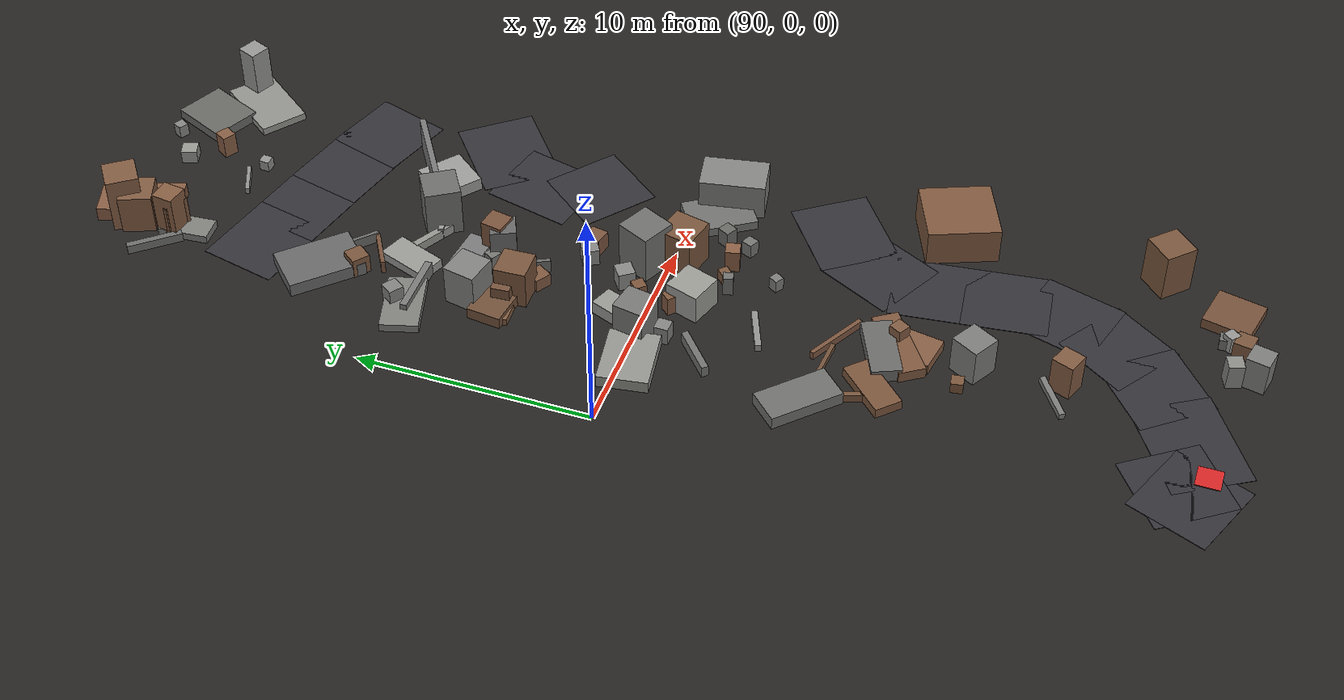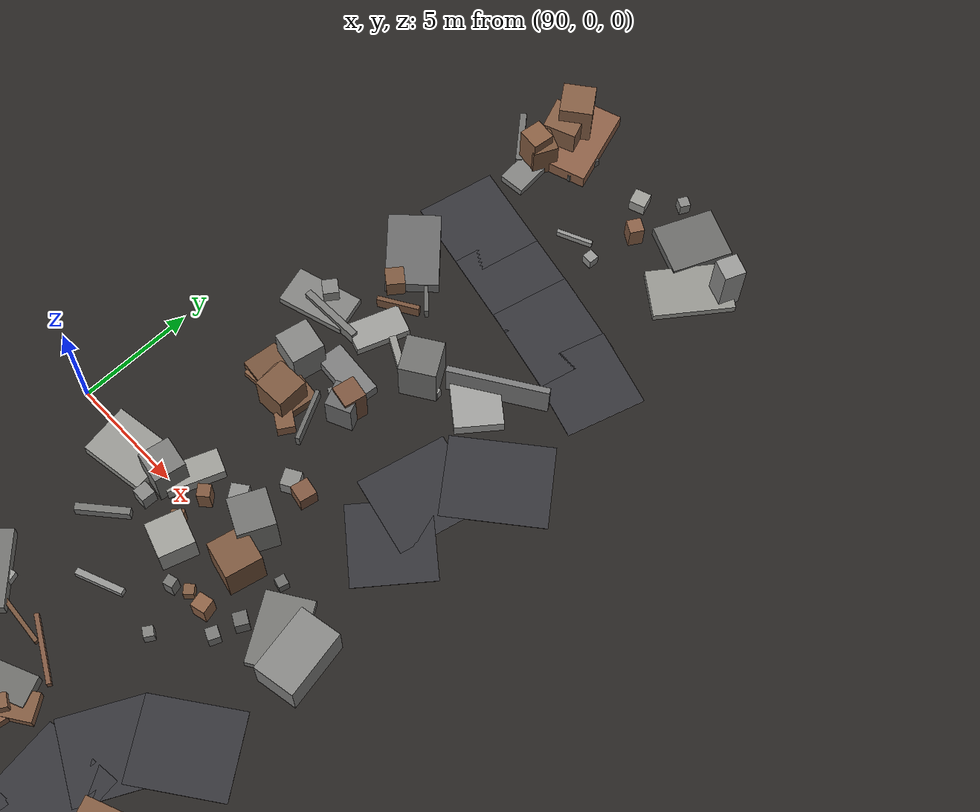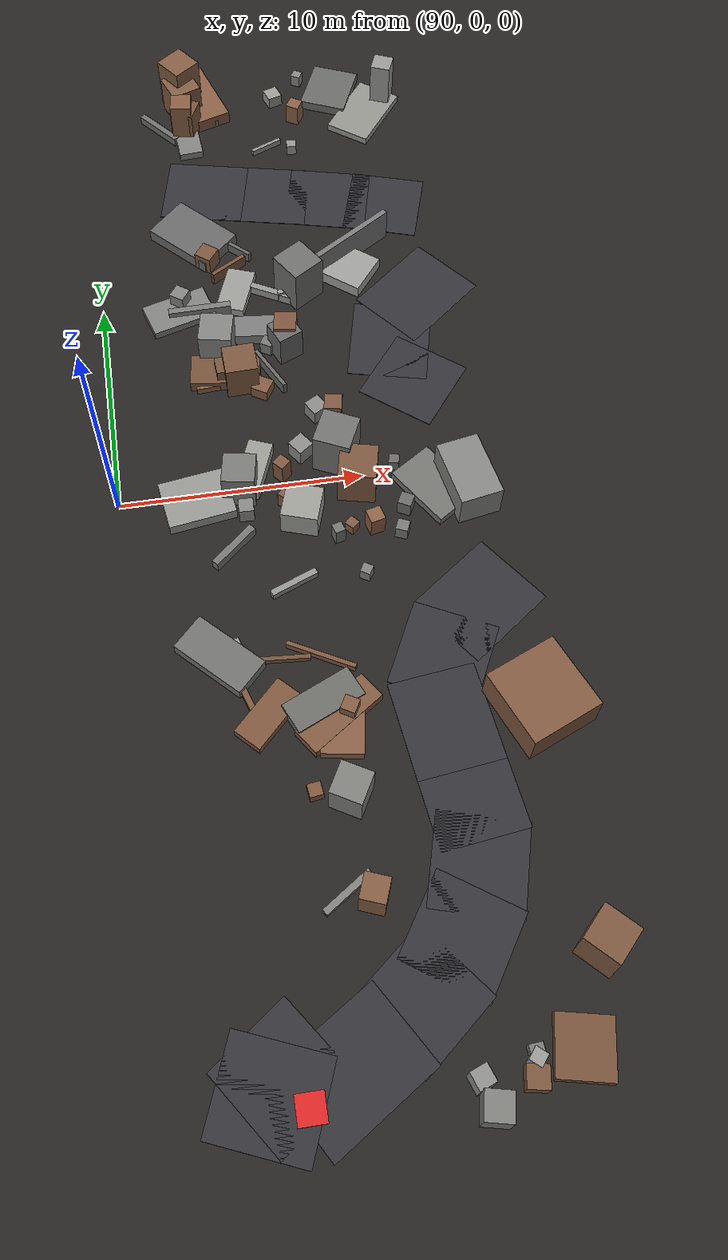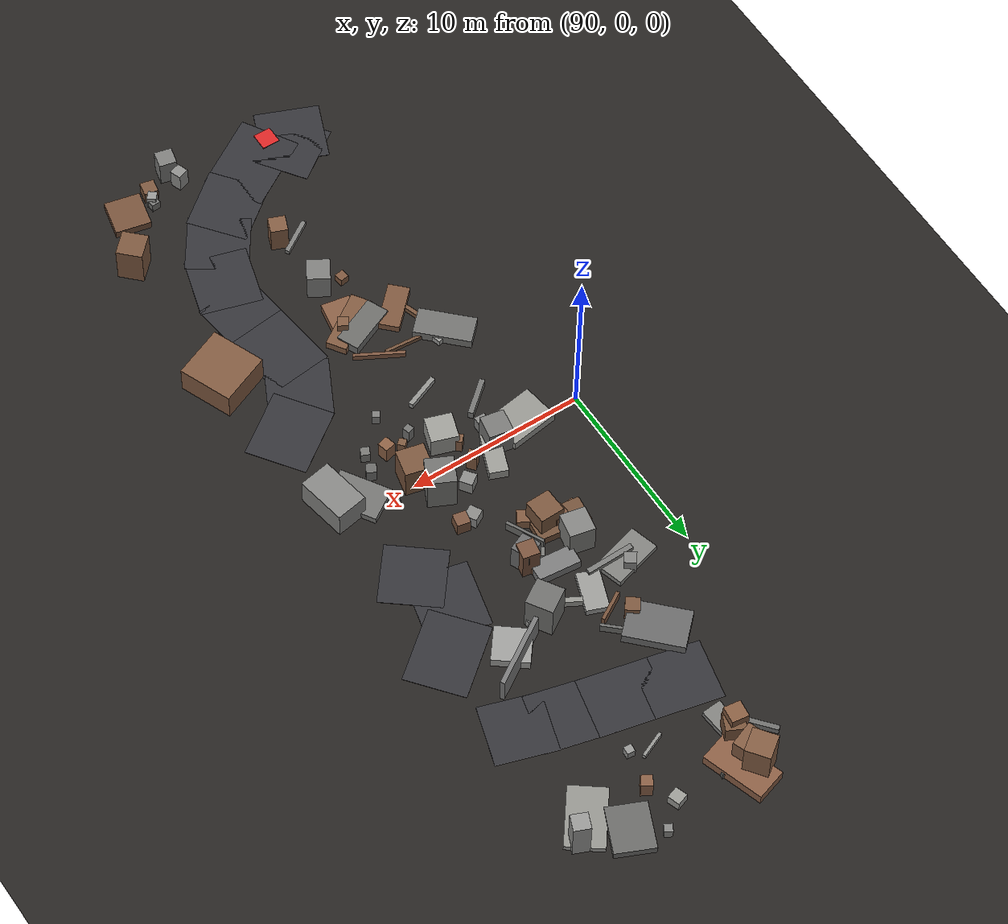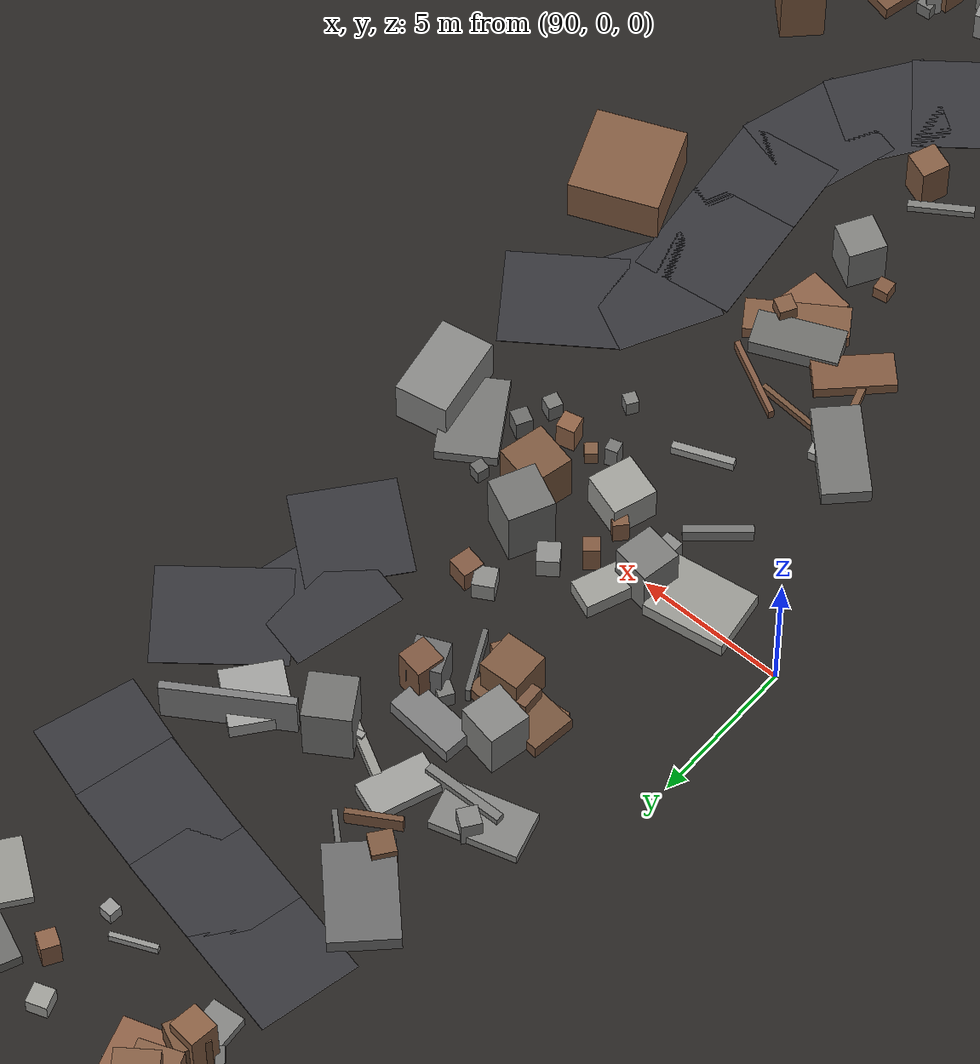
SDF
<sdf version="1.6">
 <world name="navitas_arena">
  <model name="ground_plane">
   <static>true</static>
   <link name="link">
    <collision name="collision">
     <geometry><plane><normal>0 0 1</normal><size>400 400</size></plane></geometry>
     <surface><friction><ode><mu>0.750</mu><mu2>0.750</mu2></ode></friction></surface>
    </collision>
    <visual name="visual">
     <cast_shadows>false</cast_shadows>
     <geometry><plane><normal>0 0 1</normal><size>400 400</size></plane></geometry>
     <material><ambient>0.150 0.140 0.130 1</ambient><diffuse>0.150 0.140 0.130 1</diffuse></material>
    </visual>
   </link>
  </model>
  <model name="road_zor_1_0">
   <static>true</static>
   <pose>93.369 -22.494 0.040 0 0 2.756</pose>
   <link name="link">
    <collision name="col"><geometry><box><size>3.590 3.400 0.020</size></box></geometry></collision>
    <visual name="vis">
     <geometry><box><size>3.590 3.400 0.020</size></box></geometry>
     <material><ambient>0.20 0.20 0.22 1</ambient><diffuse>0.20 0.20 0.22 1</diffuse></material>
    </visual>
   </link>
  </model>
  <model name="road_zor_2_0">
   <static>true</static>
   <pose>93.854 -21.935 0.040 0 0 2.192</pose>
   <link name="link">
    <collision name="col"><geometry><box><size>3.519 3.400 0.020</size></box></geometry></collision>
    <visual name="vis">
     <geometry><box><size>3.519 3.400 0.020</size></box></geometry>
     <material><ambient>0.20 0.20 0.22 1</ambient><diffuse>0.20 0.20 0.22 1</diffuse></material>
    </visual>
   </link>
  </model>
  <model name="road_zor_3_0">
   <static>true</static>
   <pose>96.139 -22.070 0.040 0 0 0.548</pose>
   <link name="link">
    <collision name="col"><geometry><box><size>4.469 3.400 0.020</size></box></geometry></collision>
    <visual name="vis">
     <geometry><box><size>4.469 3.400 0.020</size></box></geometry>
     <material><ambient>0.20 0.20 0.22 1</ambient><diffuse>0.20 0.20 0.22 1</diffuse></material>
    </visual>
   </link>
  </model>
  <model name="road_zor_3_1">
   <static>true</static>
   <pose>98.700 -20.320 0.040 0 0 0.668</pose>
   <link name="link">
    <collision name="col"><geometry><box><size>3.546 3.400 0.020</size></box></geometry></collision>
    <visual name="vis">
     <geometry><box><size>3.546 3.400 0.020</size></box></geometry>
     <material><ambient>0.20 0.20 0.22 1</ambient><diffuse>0.20 0.20 0.22 1</diffuse></material>
    </visual>
   </link>
  </model>
  <model name="road_zor_3_2">
   <static>true</static>
   <pose>100.428 -18.484 0.040 0 0 0.974</pose>
   <link name="link">
    <collision name="col"><geometry><box><size>3.355 3.400 0.020</size></box></geometry></collision>
    <visual name="vis">
     <geometry><box><size>3.355 3.400 0.020</size></box></geometry>
     <material><ambient>0.20 0.20 0.22 1</ambient><diffuse>0.20 0.20 0.22 1</diffuse></material>
    </visual>
   </link>
  </model>
  <model name="road_zor_3_3">
   <static>true</static>
   <pose>101.473 -16.234 0.040 0 0 1.290</pose>
   <link name="link">
    <collision name="col"><geometry><box><size>3.469 3.400 0.020</size></box></geometry></collision>
    <visual name="vis">
     <geometry><box><size>3.469 3.400 0.020</size></box></geometry>
     <material><ambient>0.20 0.20 0.22 1</ambient><diffuse>0.20 0.20 0.22 1</diffuse></material>
    </visual>
   </link>
  </model>
  <model name="road_zor_3_4">
   <static>true</static>
   <pose>101.668 -13.690 0.040 0 0 1.693</pose>
   <link name="link">
    <collision name="col"><geometry><box><size>3.540 3.400 0.020</size></box></geometry></collision>
    <visual name="vis">
     <geometry><box><size>3.540 3.400 0.020</size></box></geometry>
     <material><ambient>0.20 0.20 0.22 1</ambient><diffuse>0.20 0.20 0.22 1</diffuse></material>
    </visual>
   </link>
  </model>
  <model name="road_zor_3_5">
   <static>true</static>
   <pose>101.333 -10.910 0.040 0 0 1.689</pose>
   <link name="link">
    <collision name="col"><geometry><box><size>3.861 3.400 0.020</size></box></geometry></collision>
    <visual name="vis">
     <geometry><box><size>3.861 3.400 0.020</size></box></geometry>
     <material><ambient>0.20 0.20 0.22 1</ambient><diffuse>0.20 0.20 0.22 1</diffuse></material>
    </visual>
   </link>
  </model>
  <model name="road_zor_3_6">
   <static>true</static>
   <pose>101.751 -8.282 0.040 0 0 1.098</pose>
   <link name="link">
    <collision name="col"><geometry><box><size>3.501 3.400 0.020</size></box></geometry></collision>
    <visual name="vis">
     <geometry><box><size>3.501 3.400 0.020</size></box></geometry>
     <material><ambient>0.20 0.20 0.22 1</ambient><diffuse>0.20 0.20 0.22 1</diffuse></material>
    </visual>
   </link>
  </model>
  <model name="road_zor_3_7">
   <static>true</static>
   <pose>103.560 -6.250 0.040 0 0 0.624</pose>
   <link name="link">
    <collision name="col"><geometry><box><size>3.896 3.400 0.020</size></box></geometry></collision>
    <visual name="vis">
     <geometry><box><size>3.896 3.400 0.020</size></box></geometry>
     <material><ambient>0.20 0.20 0.22 1</ambient><diffuse>0.20 0.20 0.22 1</diffuse></material>
    </visual>
   </link>
  </model>
  <model name="road_zor_3_13">
   <static>true</static>
   <pose>102.884 4.444 0.040 0 0 2.468</pose>
   <link name="link">
    <collision name="col"><geometry><box><size>3.393 3.400 0.020</size></box></geometry></collision>
    <visual name="vis">
     <geometry><box><size>3.393 3.400 0.020</size></box></geometry>
     <material><ambient>0.20 0.20 0.22 1</ambient><diffuse>0.20 0.20 0.22 1</diffuse></material>
    </visual>
   </link>
  </model>
  <model name="road_zor_3_14">
   <static>true</static>
   <pose>102.252 6.648 0.040 0 0 1.336</pose>
   <link name="link">
    <collision name="col"><geometry><box><size>3.831 3.400 0.020</size></box></geometry></collision>
    <visual name="vis">
     <geometry><box><size>3.831 3.400 0.020</size></box></geometry>
     <material><ambient>0.20 0.20 0.22 1</ambient><diffuse>0.20 0.20 0.22 1</diffuse></material>
    </visual>
   </link>
  </model>
  <model name="road_zor_3_15">
   <static>true</static>
   <pose>103.891 9.124 0.040 0 0 0.681</pose>
   <link name="link">
    <collision name="col"><geometry><box><size>4.240 3.400 0.020</size></box></geometry></collision>
    <visual name="vis">
     <geometry><box><size>4.240 3.400 0.020</size></box></geometry>
     <material><ambient>0.20 0.20 0.22 1</ambient><diffuse>0.20 0.20 0.22 1</diffuse></material>
    </visual>
   </link>
  </model>
  <model name="road_zor_3_18">
   <static>true</static>
   <pose>103.312 14.594 0.040 0 0 2.840</pose>
   <link name="link">
    <collision name="col"><geometry><box><size>3.356 3.400 0.020</size></box></geometry></collision>
    <visual name="vis">
     <geometry><box><size>3.356 3.400 0.020</size></box></geometry>
     <material><ambient>0.20 0.20 0.22 1</ambient><diffuse>0.20 0.20 0.22 1</diffuse></material>
    </visual>
   </link>
  </model>
  <model name="road_zor_3_19">
   <static>true</static>
   <pose>100.768 15.296 0.040 0 0 2.900</pose>
   <link name="link">
    <collision name="col"><geometry><box><size>3.725 3.400 0.020</size></box></geometry></collision>
    <visual name="vis">
     <geometry><box><size>3.725 3.400 0.020</size></box></geometry>
     <material><ambient>0.20 0.20 0.22 1</ambient><diffuse>0.20 0.20 0.22 1</diffuse></material>
    </visual>
   </link>
  </model>
  <model name="road_zor_3_20">
   <static>true</static>
   <pose>97.956 15.952 0.040 0 0 2.924</pose>
   <link name="link">
    <collision name="col"><geometry><box><size>3.851 3.400 0.020</size></box></geometry></collision>
    <visual name="vis">
     <geometry><box><size>3.851 3.400 0.020</size></box></geometry>
     <material><ambient>0.20 0.20 0.22 1</ambient><diffuse>0.20 0.20 0.22 1</diffuse></material>
    </visual>
   </link>
  </model>
  <model name="road_zor_3_21">
   <static>true</static>
   <pose>95.135 16.579 0.040 0 0 2.922</pose>
   <link name="link">
    <collision name="col"><geometry><box><size>3.727 3.400 0.020</size></box></geometry></collision>
    <visual name="vis">
     <geometry><box><size>3.727 3.400 0.020</size></box></geometry>
     <material><ambient>0.20 0.20 0.22 1</ambient><diffuse>0.20 0.20 0.22 1</diffuse></material>
    </visual>
   </link>
  </model>
  <model name="deb_zor_2">
   <static>true</static>
   <pose>96.750 -0.846 0.429 0 0 0.827</pose>
   <link name="link">
    <collision name="col"><geometry><box><size>0.511 0.511 0.857</size></box></geometry></collision>
    <visual name="vis">
     <geometry><box><size>0.511 0.511 0.857</size></box></geometry>
     <material><ambient>0.50 0.35 0.25 1</ambient><diffuse>0.50 0.35 0.25 1</diffuse></material>
    </visual>
   </link>
  </model>
  <model name="deb_zor_17">
   <static>true</static>
   <pose>97.459 9.899 0.213 0 0 2.646</pose>
   <link name="link">
    <collision name="col"><geometry><box><size>1.948 0.295 0.427</size></box></geometry></collision>
    <visual name="vis">
     <geometry><box><size>1.948 0.295 0.427</size></box></geometry>
     <material><ambient>0.58 0.58 0.56 1</ambient><diffuse>0.58 0.58 0.56 1</diffuse></material>
    </visual>
   </link>
  </model>
  <model name="deb_zor_18">
   <static>true</static>
   <pose>94.829 12.154 0.431 0 0 2.495</pose>
   <link name="link">
    <collision name="col"><geometry><box><size>0.777 0.777 0.862</size></box></geometry></collision>
    <visual name="vis">
     <geometry><box><size>0.777 0.777 0.862</size></box></geometry>
     <material><ambient>0.48 0.34 0.24 1</ambient><diffuse>0.48 0.34 0.24 1</diffuse></material>
    </visual>
   </link>
  </model>
  <model name="deb_zor_19">
   <static>true</static>
   <pose>99.174 -2.375 0.257 0 0 2.319</pose>
   <link name="link">
    <collision name="col"><geometry><box><size>0.422 0.422 0.515</size></box></geometry></collision>
    <visual name="vis">
     <geometry><box><size>0.422 0.422 0.515</size></box></geometry>
     <material><ambient>0.49 0.35 0.25 1</ambient><diffuse>0.49 0.35 0.25 1</diffuse></material>
    </visual>
   </link>
  </model>
  <model name="deb_zor_23">
   <static>true</static>
   <pose>99.696 -0.400 0.946 0 0 1.345</pose>
   <link name="link">
    <collision name="col"><geometry><box><size>1.538 1.538 1.891</size></box></geometry></collision>
    <visual name="vis">
     <geometry><box><size>1.538 1.538 1.891</size></box></geometry>
     <material><ambient>0.48 0.34 0.24 1</ambient><diffuse>0.48 0.34 0.24 1</diffuse></material>
    </visual>
   </link>
  </model>
  <model name="deb_zor_27">
   <static>true</static>
   <pose>95.387 23.486 0.246 0 0 2.366</pose>
   <link name="link">
    <collision name="col"><geometry><box><size>0.789 0.789 0.492</size></box></geometry></collision>
    <visual name="vis">
     <geometry><box><size>0.789 0.789 0.492</size></box></geometry>
     <material><ambient>0.53 0.53 0.52 1</ambient><diffuse>0.53 0.53 0.52 1</diffuse></material>
    </visual>
   </link>
  </model>
  <model name="deb_zor_34">
   <static>true</static>
   <pose>94.793 7.144 0.899 0 0 2.946</pose>
   <link name="link">
    <collision name="col"><geometry><box><size>1.407 1.407 1.797</size></box></geometry></collision>
    <visual name="vis">
     <geometry><box><size>1.407 1.407 1.797</size></box></geometry>
     <material><ambient>0.51 0.51 0.50 1</ambient><diffuse>0.51 0.51 0.50 1</diffuse></material>
    </visual>
   </link>
  </model>
  <model name="deb_zor_40">
   <static>true</static>
   <pose>95.390 22.481 0.309 0 0 1.883</pose>
   <link name="link">
    <collision name="col"><geometry><box><size>3.519 1.780 0.617</size></box></geometry></collision>
    <visual name="vis">
     <geometry><box><size>3.519 1.780 0.617</size></box></geometry>
     <material><ambient>0.54 0.37 0.27 1</ambient><diffuse>0.54 0.37 0.27 1</diffuse></material>
    </visual>
   </link>
  </model>
  <model name="deb_zor_45">
   <static>true</static>
   <pose>98.533 3.294 0.374 0 0 0.518</pose>
   <link name="link">
    <collision name="col"><geometry><box><size>0.711 0.711 0.748</size></box></geometry></collision>
    <visual name="vis">
     <geometry><box><size>0.711 0.711 0.748</size></box></geometry>
     <material><ambient>0.53 0.53 0.52 1</ambient><diffuse>0.53 0.53 0.52 1</diffuse></material>
    </visual>
   </link>
  </model>
  <model name="deb_zor_51">
   <static>true</static>
   <pose>95.715 11.509 0.294 0 0 0.539</pose>
   <link name="link">
    <collision name="col"><geometry><box><size>1.768 0.183 0.589</size></box></geometry></collision>
    <visual name="vis">
     <geometry><box><size>1.768 0.183 0.589</size></box></geometry>
     <material><ambient>0.46 0.32 0.23 1</ambient><diffuse>0.46 0.32 0.23 1</diffuse></material>
    </visual>
   </link>
  </model>
  <model name="deb_zor_53">
   <static>true</static>
   <pose>103.571 -22.536 0.235 0 0 1.356</pose>
   <link name="link">
    <collision name="col"><geometry><box><size>2.039 1.977 0.469</size></box></geometry></collision>
    <visual name="vis">
     <geometry><box><size>2.039 1.977 0.469</size></box></geometry>
     <material><ambient>0.46 0.32 0.23 1</ambient><diffuse>0.46 0.32 0.23 1</diffuse></material>
    </visual>
   </link>
  </model>
  <model name="deb_zor_55">
   <static>true</static>
   <pose>93.188 -0.347 0.267 0 0 0.149</pose>
   <link name="link">
    <collision name="col"><geometry><box><size>2.759 2.107 0.534</size></box></geometry></collision>
    <visual name="vis">
     <geometry><box><size>2.759 2.107 0.534</size></box></geometry>
     <material><ambient>0.58 0.58 0.56 1</ambient><diffuse>0.58 0.58 0.56 1</diffuse></material>
    </visual>
   </link>
  </model>
  <model name="deb_zor_59">
   <static>true</static>
   <pose>101.876 22.266 0.225 0 0 1.157</pose>
   <link name="link">
    <collision name="col"><geometry><box><size>2.597 2.180 0.450</size></box></geometry></collision>
    <visual name="vis">
     <geometry><box><size>2.597 2.180 0.450</size></box></geometry>
     <material><ambient>0.41 0.41 0.40 1</ambient><diffuse>0.41 0.41 0.40 1</diffuse></material>
    </visual>
   </link>
  </model>
  <model name="deb_zor_64">
   <static>true</static>
   <pose>96.184 -12.900 0.241 0 0 1.707</pose>
   <link name="link">
    <collision name="col"><geometry><box><size>0.509 0.509 0.483</size></box></geometry></collision>
    <visual name="vis">
     <geometry><box><size>0.509 0.509 0.483</size></box></geometry>
     <material><ambient>0.49 0.34 0.24 1</ambient><diffuse>0.49 0.34 0.24 1</diffuse></material>
    </visual>
   </link>
  </model>
  <model name="deb_zor_66">
   <static>true</static>
   <pose>94.979 5.716 0.503 0 0 1.639</pose>
   <link name="link">
    <collision name="col"><geometry><box><size>0.799 0.799 1.006</size></box></geometry></collision>
    <visual name="vis">
     <geometry><box><size>0.799 0.799 1.006</size></box></geometry>
     <material><ambient>0.47 0.33 0.24 1</ambient><diffuse>0.47 0.33 0.24 1</diffuse></material>
    </visual>
   </link>
  </model>
  <model name="deb_zor_70">
   <static>true</static>
   <pose>96.553 -4.561 0.168 0 0 0.383</pose>
   <link name="link">
    <collision name="col"><geometry><box><size>2.001 0.259 0.336</size></box></geometry></collision>
    <visual name="vis">
     <geometry><box><size>2.001 0.259 0.336</size></box></geometry>
     <material><ambient>0.57 0.57 0.56 1</ambient><diffuse>0.57 0.57 0.56 1</diffuse></material>
    </visual>
   </link>
  </model>
  <model name="deb_zor_74">
   <static>true</static>
   <pose>94.507 20.507 1.048 0 0 1.449</pose>
   <link name="link">
    <collision name="col"><geometry><box><size>0.949 0.949 2.096</size></box></geometry></collision>
    <visual name="vis">
     <geometry><box><size>0.949 0.949 2.096</size></box></geometry>
     <material><ambient>0.53 0.37 0.26 1</ambient><diffuse>0.53 0.37 0.26 1</diffuse></material>
    </visual>
   </link>
  </model>
  <model name="deb_zor_75">
   <static>true</static>
   <pose>101.839 -23.198 0.374 0 0 2.960</pose>
   <link name="link">
    <collision name="col"><geometry><box><size>0.775 0.775 0.748</size></box></geometry></collision>
    <visual name="vis">
     <geometry><box><size>0.775 0.775 0.748</size></box></geometry>
     <material><ambient>0.48 0.34 0.24 1</ambient><diffuse>0.48 0.34 0.24 1</diffuse></material>
    </visual>
   </link>
  </model>
  <model name="deb_zor_77">
   <static>true</static>
   <pose>96.732 0.496 0.531 0 0 2.288</pose>
   <link name="link">
    <collision name="col"><geometry><box><size>0.523 0.523 1.063</size></box></geometry></collision>
    <visual name="vis">
     <geometry><box><size>0.523 0.523 1.063</size></box></geometry>
     <material><ambient>0.49 0.34 0.24 1</ambient><diffuse>0.49 0.34 0.24 1</diffuse></material>
    </visual>
   </link>
  </model>
  <model name="deb_zor_82">
   <static>true</static>
   <pose>95.607 0.788 0.300 0 0 1.197</pose>
   <link name="link">
    <collision name="col"><geometry><box><size>2.365 1.037 0.599</size></box></geometry></collision>
    <visual name="vis">
     <geometry><box><size>2.365 1.037 0.599</size></box></geometry>
     <material><ambient>0.60 0.60 0.58 1</ambient><diffuse>0.60 0.60 0.58 1</diffuse></material>
    </visual>
   </link>
  </model>
  <model name="deb_zor_85">
   <static>true</static>
   <pose>94.620 22.118 0.878 0 0 0.362</pose>
   <link name="link">
    <collision name="col"><geometry><box><size>1.423 1.423 1.756</size></box></geometry></collision>
    <visual name="vis">
     <geometry><box><size>1.423 1.423 1.756</size></box></geometry>
     <material><ambient>0.51 0.36 0.26 1</ambient><diffuse>0.51 0.36 0.26 1</diffuse></material>
    </visual>
   </link>
  </model>
  <model name="deb_zor_87">
   <static>true</static>
   <pose>101.121 -2.861 0.327 0 0 1.154</pose>
   <link name="link">
    <collision name="col"><geometry><box><size>0.491 0.491 0.653</size></box></geometry></collision>
    <visual name="vis">
     <geometry><box><size>0.491 0.491 0.653</size></box></geometry>
     <material><ambient>0.46 0.46 0.45 1</ambient><diffuse>0.46 0.46 0.45 1</diffuse></material>
    </visual>
   </link>
  </model>
  <model name="deb_zor_89">
   <static>true</static>
   <pose>93.309 9.419 0.181 0 0 0.281</pose>
   <link name="link">
    <collision name="col"><geometry><box><size>2.858 1.603 0.362</size></box></geometry></collision>
    <visual name="vis">
     <geometry><box><size>2.858 1.603 0.362</size></box></geometry>
     <material><ambient>0.50 0.50 0.49 1</ambient><diffuse>0.50 0.50 0.49 1</diffuse></material>
    </visual>
   </link>
  </model>
  <model name="deb_zor_93">
   <static>true</static>
   <pose>96.946 6.975 0.315 0 0 1.027</pose>
   <link name="link">
    <collision name="col"><geometry><box><size>0.510 0.510 0.630</size></box></geometry></collision>
    <visual name="vis">
     <geometry><box><size>0.510 0.510 0.630</size></box></geometry>
     <material><ambient>0.46 0.46 0.45 1</ambient><diffuse>0.46 0.46 0.45 1</diffuse></material>
    </visual>
   </link>
  </model>
  <model name="deb_zor_101">
   <static>true</static>
   <pose>94.418 -2.678 0.243 0 0 0.708</pose>
   <link name="link">
    <collision name="col"><geometry><box><size>2.166 0.295 0.487</size></box></geometry></collision>
    <visual name="vis">
     <geometry><box><size>2.166 0.295 0.487</size></box></geometry>
     <material><ambient>0.45 0.45 0.44 1</ambient><diffuse>0.45 0.45 0.44 1</diffuse></material>
    </visual>
   </link>
  </model>
  <model name="deb_zor_102">
   <static>true</static>
   <pose>96.888 5.580 0.293 0 0 2.038</pose>
   <link name="link">
    <collision name="col"><geometry><box><size>2.201 0.171 0.586</size></box></geometry></collision>
    <visual name="vis">
     <geometry><box><size>2.201 0.171 0.586</size></box></geometry>
     <material><ambient>0.41 0.41 0.40 1</ambient><diffuse>0.41 0.41 0.40 1</diffuse></material>
    </visual>
   </link>
  </model>
  <model name="deb_zor_103">
   <static>true</static>
   <pose>97.877 -10.098 0.491 0 0 2.616</pose>
   <link name="link">
    <collision name="col"><geometry><box><size>0.581 0.581 0.982</size></box></geometry></collision>
    <visual name="vis">
     <geometry><box><size>0.581 0.581 0.982</size></box></geometry>
     <material><ambient>0.51 0.36 0.26 1</ambient><diffuse>0.51 0.36 0.26 1</diffuse></material>
    </visual>
   </link>
  </model>
  <model name="deb_zor_106">
   <static>true</static>
   <pose>95.557 -7.622 0.134 0 0 3.066</pose>
   <link name="link">
    <collision name="col"><geometry><box><size>2.417 0.173 0.268</size></box></geometry></collision>
    <visual name="vis">
     <geometry><box><size>2.417 0.173 0.268</size></box></geometry>
     <material><ambient>0.45 0.32 0.23 1</ambient><diffuse>0.45 0.32 0.23 1</diffuse></material>
    </visual>
   </link>
  </model>
  <model name="deb_zor_109">
   <static>true</static>
   <pose>100.074 -22.993 0.560 0 0 0.344</pose>
   <link name="link">
    <collision name="col"><geometry><box><size>0.652 0.652 1.120</size></box></geometry></collision>
    <visual name="vis">
     <geometry><box><size>0.652 0.652 1.120</size></box></geometry>
     <material><ambient>0.55 0.55 0.54 1</ambient><diffuse>0.55 0.55 0.54 1</diffuse></material>
    </visual>
   </link>
  </model>
  <model name="deb_zor_112">
   <static>true</static>
   <pose>96.445 4.772 0.291 0 0 2.590</pose>
   <link name="link">
    <collision name="col"><geometry><box><size>0.735 0.735 0.583</size></box></geometry></collision>
    <visual name="vis">
     <geometry><box><size>0.735 0.735 0.583</size></box></geometry>
     <material><ambient>0.50 0.35 0.25 1</ambient><diffuse>0.50 0.35 0.25 1</diffuse></material>
    </visual>
   </link>
  </model>
  <model name="deb_zor_115">
   <static>true</static>
   <pose>97.580 7.508 0.249 0 0 1.937</pose>
   <link name="link">
    <collision name="col"><geometry><box><size>0.500 0.500 0.497</size></box></geometry></collision>
    <visual name="vis">
     <geometry><box><size>0.500 0.500 0.497</size></box></geometry>
     <material><ambient>0.48 0.34 0.24 1</ambient><diffuse>0.48 0.34 0.24 1</diffuse></material>
    </visual>
   </link>
  </model>
  <model name="deb_zor_122">
   <static>true</static>
   <pose>97.433 -13.207 0.825 0 0 1.050</pose>
   <link name="link">
    <collision name="col"><geometry><box><size>1.263 1.263 1.650</size></box></geometry></collision>
    <visual name="vis">
     <geometry><box><size>1.263 1.263 1.650</size></box></geometry>
     <material><ambient>0.49 0.49 0.48 1</ambient><diffuse>0.49 0.49 0.48 1</diffuse></material>
    </visual>
   </link>
  </model>
  <model name="deb_zor_127">
   <static>true</static>
   <pose>97.627 1.431 0.408 0 0 0.632</pose>
   <link name="link">
    <collision name="col"><geometry><box><size>0.727 0.727 0.816</size></box></geometry></collision>
    <visual name="vis">
     <geometry><box><size>0.727 0.727 0.816</size></box></geometry>
     <material><ambient>0.54 0.54 0.53 1</ambient><diffuse>0.54 0.54 0.53 1</diffuse></material>
    </visual>
   </link>
  </model>
  <model name="deb_zor_134">
   <static>true</static>
   <pose>97.562 -10.411 0.236 0 0 1.403</pose>
   <link name="link">
    <collision name="col"><geometry><box><size>2.723 1.604 0.471</size></box></geometry></collision>
    <visual name="vis">
     <geometry><box><size>2.723 1.604 0.471</size></box></geometry>
     <material><ambient>0.53 0.37 0.27 1</ambient><diffuse>0.53 0.37 0.27 1</diffuse></material>
    </visual>
   </link>
  </model>
  <model name="deb_zor_138">
   <static>true</static>
   <pose>93.433 9.905 0.484 0 0 2.521</pose>
   <link name="link">
    <collision name="col"><geometry><box><size>0.650 0.650 0.968</size></box></geometry></collision>
    <visual name="vis">
     <geometry><box><size>0.650 0.650 0.968</size></box></geometry>
     <material><ambient>0.51 0.51 0.50 1</ambient><diffuse>0.51 0.51 0.50 1</diffuse></material>
    </visual>
   </link>
  </model>
  <model name="deb_zor_139">
   <static>true</static>
   <pose>97.537 -9.220 0.265 0 0 1.122</pose>
   <link name="link">
    <collision name="col"><geometry><box><size>0.686 0.686 0.531</size></box></geometry></collision>
    <visual name="vis">
     <geometry><box><size>0.686 0.686 0.531</size></box></geometry>
     <material><ambient>0.50 0.50 0.49 1</ambient><diffuse>0.50 0.50 0.49 1</diffuse></material>
    </visual>
   </link>
  </model>
  <model name="deb_zor_141">
   <static>true</static>
   <pose>96.211 21.607 0.196 0 0 1.389</pose>
   <link name="link">
    <collision name="col"><geometry><box><size>1.528 0.263 0.391</size></box></geometry></collision>
    <visual name="vis">
     <geometry><box><size>1.528 0.263 0.391</size></box></geometry>
     <material><ambient>0.42 0.42 0.41 1</ambient><diffuse>0.42 0.42 0.41 1</diffuse></material>
    </visual>
   </link>
  </model>
  <model name="deb_zor_142">
   <static>true</static>
   <pose>97.458 -10.191 0.243 0 0 0.595</pose>
   <link name="link">
    <collision name="col"><geometry><box><size>3.317 1.148 0.486</size></box></geometry></collision>
    <visual name="vis">
     <geometry><box><size>3.317 1.148 0.486</size></box></geometry>
     <material><ambient>0.50 0.35 0.25 1</ambient><diffuse>0.50 0.35 0.25 1</diffuse></material>
    </visual>
   </link>
  </model>
  <model name="deb_zor_147">
   <static>true</static>
   <pose>99.032 22.136 0.290 0 0 0.332</pose>
   <link name="link">
    <collision name="col"><geometry><box><size>0.683 0.683 0.581</size></box></geometry></collision>
    <visual name="vis">
     <geometry><box><size>0.683 0.683 0.581</size></box></geometry>
     <material><ambient>0.60 0.60 0.58 1</ambient><diffuse>0.60 0.60 0.58 1</diffuse></material>
    </visual>
   </link>
  </model>
  <model name="deb_zor_148">
   <static>true</static>
   <pose>103.314 20.572 0.166 0 0 0.928</pose>
   <link name="link">
    <collision name="col"><geometry><box><size>3.376 2.085 0.333</size></box></geometry></collision>
    <visual name="vis">
     <geometry><box><size>3.376 2.085 0.333</size></box></geometry>
     <material><ambient>0.57 0.57 0.55 1</ambient><diffuse>0.57 0.57 0.55 1</diffuse></material>
    </visual>
   </link>
  </model>
  <model name="deb_zor_149">
   <static>true</static>
   <pose>98.337 18.989 0.145 0 0 0.411</pose>
   <link name="link">
    <collision name="col"><geometry><box><size>1.518 0.166 0.290</size></box></geometry></collision>
    <visual name="vis">
     <geometry><box><size>1.518 0.166 0.290</size></box></geometry>
     <material><ambient>0.57 0.57 0.56 1</ambient><diffuse>0.57 0.57 0.56 1</diffuse></material>
    </visual>
   </link>
  </model>
  <model name="deb_zor_152">
   <static>true</static>
   <pose>95.902 10.195 0.208 0 0 1.216</pose>
   <link name="link">
    <collision name="col"><geometry><box><size>2.263 1.241 0.416</size></box></geometry></collision>
    <visual name="vis">
     <geometry><box><size>2.263 1.241 0.416</size></box></geometry>
     <material><ambient>0.60 0.60 0.59 1</ambient><diffuse>0.60 0.60 0.59 1</diffuse></material>
    </visual>
   </link>
  </model>
  <model name="deb_zor_158">
   <static>true</static>
   <pose>94.649 19.956 0.177 0 0 1.649</pose>
   <link name="link">
    <collision name="col"><geometry><box><size>2.188 1.101 0.354</size></box></geometry></collision>
    <visual name="vis">
     <geometry><box><size>2.188 1.101 0.354</size></box></geometry>
     <material><ambient>0.50 0.50 0.49 1</ambient><diffuse>0.50 0.50 0.49 1</diffuse></material>
    </visual>
   </link>
  </model>
  <model name="deb_zor_169">
   <static>true</static>
   <pose>95.084 -1.129 0.393 0 0 1.542</pose>
   <link name="link">
    <collision name="col"><geometry><box><size>0.601 0.601 0.787</size></box></geometry></collision>
    <visual name="vis">
     <geometry><box><size>0.601 0.601 0.787</size></box></geometry>
     <material><ambient>0.52 0.52 0.51 1</ambient><diffuse>0.52 0.52 0.51 1</diffuse></material>
    </visual>
   </link>
  </model>
  <model name="deb_zor_171">
   <static>true</static>
   <pose>97.152 -7.726 0.172 0 0 2.645</pose>
   <link name="link">
    <collision name="col"><geometry><box><size>2.786 0.180 0.344</size></box></geometry></collision>
    <visual name="vis">
     <geometry><box><size>2.786 0.180 0.344</size></box></geometry>
     <material><ambient>0.49 0.34 0.25 1</ambient><diffuse>0.49 0.34 0.25 1</diffuse></material>
    </visual>
   </link>
  </model>
  <model name="deb_zor_181">
   <static>true</static>
   <pose>96.964 -9.622 0.287 0 0 0.415</pose>
   <link name="link">
    <collision name="col"><geometry><box><size>2.858 1.260 0.574</size></box></geometry></collision>
    <visual name="vis">
     <geometry><box><size>2.858 1.260 0.574</size></box></geometry>
     <material><ambient>0.42 0.42 0.41 1</ambient><diffuse>0.42 0.42 0.41 1</diffuse></material>
    </visual>
   </link>
  </model>
  <model name="deb_zor_182">
   <static>true</static>
   <pose>99.953 20.810 0.505 0 0 2.599</pose>
   <link name="link">
    <collision name="col"><geometry><box><size>0.609 0.609 1.011</size></box></geometry></collision>
    <visual name="vis">
     <geometry><box><size>0.609 0.609 1.011</size></box></geometry>
     <material><ambient>0.53 0.37 0.27 1</ambient><diffuse>0.53 0.37 0.27 1</diffuse></material>
    </visual>
   </link>
  </model>
  <model name="deb_zor_185">
   <static>true</static>
   <pose>93.365 20.806 0.201 0 0 2.274</pose>
   <link name="link">
    <collision name="col"><geometry><box><size>2.327 0.278 0.401</size></box></geometry></collision>
    <visual name="vis">
     <geometry><box><size>2.327 0.278 0.401</size></box></geometry>
     <material><ambient>0.43 0.43 0.42 1</ambient><diffuse>0.43 0.43 0.42 1</diffuse></material>
    </visual>
   </link>
  </model>
  <model name="deb_zor_196">
   <static>true</static>
   <pose>97.741 7.075 0.877 0 0 1.389</pose>
   <link name="link">
    <collision name="col"><geometry><box><size>0.952 0.952 1.755</size></box></geometry></collision>
    <visual name="vis">
     <geometry><box><size>0.952 0.952 1.755</size></box></geometry>
     <material><ambient>0.48 0.33 0.24 1</ambient><diffuse>0.48 0.33 0.24 1</diffuse></material>
    </visual>
   </link>
  </model>
  <model name="deb_zor_197">
   <static>true</static>
   <pose>97.284 -1.591 0.658 0 0 2.826</pose>
   <link name="link">
    <collision name="col"><geometry><box><size>1.494 1.494 1.316</size></box></geometry></collision>
    <visual name="vis">
     <geometry><box><size>1.494 1.494 1.316</size></box></geometry>
     <material><ambient>0.61 0.61 0.59 1</ambient><diffuse>0.61 0.61 0.59 1</diffuse></material>
    </visual>
   </link>
  </model>
  <model name="deb_zor_201">
   <static>true</static>
   <pose>100.085 -2.432 0.508 0 0 0.238</pose>
   <link name="link">
    <collision name="col"><geometry><box><size>0.616 0.616 1.016</size></box></geometry></collision>
    <visual name="vis">
     <geometry><box><size>0.616 0.616 1.016</size></box></geometry>
     <material><ambient>0.55 0.38 0.27 1</ambient><diffuse>0.55 0.38 0.27 1</diffuse></material>
    </visual>
   </link>
  </model>
  <model name="deb_zor_208">
   <static>true</static>
   <pose>98.571 -2.720 0.430 0 0 0.275</pose>
   <link name="link">
    <collision name="col"><geometry><box><size>0.418 0.418 0.860</size></box></geometry></collision>
    <visual name="vis">
     <geometry><box><size>0.418 0.418 0.860</size></box></geometry>
     <material><ambient>0.45 0.45 0.44 1</ambient><diffuse>0.45 0.45 0.44 1</diffuse></material>
    </visual>
   </link>
  </model>
  <model name="deb_zor_210">
   <static>true</static>
   <pose>104.344 21.493 1.181 0 0 2.748</pose>
   <link name="link">
    <collision name="col"><geometry><box><size>0.915 0.915 2.362</size></box></geometry></collision>
    <visual name="vis">
     <geometry><box><size>0.915 0.915 2.362</size></box></geometry>
     <material><ambient>0.59 0.59 0.58 1</ambient><diffuse>0.59 0.59 0.58 1</diffuse></material>
    </visual>
   </link>
  </model>
  <model name="deb_zor_213">
   <static>true</static>
   <pose>95.614 5.427 0.856 0 0 0.039</pose>
   <link name="link">
    <collision name="col"><geometry><box><size>1.364 1.364 1.712</size></box></geometry></collision>
    <visual name="vis">
     <geometry><box><size>1.364 1.364 1.712</size></box></geometry>
     <material><ambient>0.48 0.34 0.24 1</ambient><diffuse>0.48 0.34 0.24 1</diffuse></material>
    </visual>
   </link>
  </model>
  <model name="deb_zor_214">
   <static>true</static>
   <pose>94.977 0.017 0.903 0 0 2.965</pose>
   <link name="link">
    <collision name="col"><geometry><box><size>1.328 1.328 1.806</size></box></geometry></collision>
    <visual name="vis">
     <geometry><box><size>1.328 1.328 1.806</size></box></geometry>
     <material><ambient>0.47 0.47 0.46 1</ambient><diffuse>0.47 0.47 0.46 1</diffuse></material>
    </visual>
   </link>
  </model>
  <model name="deb_zor_217">
   <static>true</static>
   <pose>94.710 5.274 0.158 0 0 0.070</pose>
   <link name="link">
    <collision name="col"><geometry><box><size>2.054 0.284 0.317</size></box></geometry></collision>
    <visual name="vis">
     <geometry><box><size>2.054 0.284 0.317</size></box></geometry>
     <material><ambient>0.52 0.37 0.26 1</ambient><diffuse>0.52 0.37 0.26 1</diffuse></material>
    </visual>
   </link>
  </model>
  <model name="deb_zor_218">
   <static>true</static>
   <pose>94.624 22.769 1.245 0 0 2.213</pose>
   <link name="link">
    <collision name="col"><geometry><box><size>1.377 1.377 2.491</size></box></geometry></collision>
    <visual name="vis">
     <geometry><box><size>1.377 1.377 2.491</size></box></geometry>
     <material><ambient>0.51 0.36 0.26 1</ambient><diffuse>0.51 0.36 0.26 1</diffuse></material>
    </visual>
   </link>
  </model>
  <model name="deb_zor_219">
   <static>true</static>
   <pose>94.917 -9.812 0.216 0 0 0.782</pose>
   <link name="link">
    <collision name="col"><geometry><box><size>2.591 1.188 0.432</size></box></geometry></collision>
    <visual name="vis">
     <geometry><box><size>2.591 1.188 0.432</size></box></geometry>
     <material><ambient>0.49 0.34 0.24 1</ambient><diffuse>0.49 0.34 0.24 1</diffuse></material>
    </visual>
   </link>
  </model>
  <model name="deb_zor_221">
   <static>true</static>
   <pose>99.513 18.698 0.243 0 0 1.500</pose>
   <link name="link">
    <collision name="col"><geometry><box><size>0.444 0.444 0.486</size></box></geometry></collision>
    <visual name="vis">
     <geometry><box><size>0.444 0.444 0.486</size></box></geometry>
     <material><ambient>0.58 0.58 0.57 1</ambient><diffuse>0.58 0.58 0.57 1</diffuse></material>
    </visual>
   </link>
  </model>
  <model name="deb_zor_227">
   <static>true</static>
   <pose>99.043 1.016 1.093 0 0 1.125</pose>
   <link name="link">
    <collision name="col"><geometry><box><size>1.549 1.549 2.185</size></box></geometry></collision>
    <visual name="vis">
     <geometry><box><size>1.549 1.549 2.185</size></box></geometry>
     <material><ambient>0.44 0.44 0.43 1</ambient><diffuse>0.44 0.44 0.43 1</diffuse></material>
    </visual>
   </link>
  </model>
  <model name="deb_zor_230">
   <static>true</static>
   <pose>104.951 -19.550 1.078 0 0 0.785</pose>
   <link name="link">
    <collision name="col"><geometry><box><size>1.428 1.428 2.155</size></box></geometry></collision>
    <visual name="vis">
     <geometry><box><size>1.428 1.428 2.155</size></box></geometry>
     <material><ambient>0.48 0.34 0.24 1</ambient><diffuse>0.48 0.34 0.24 1</diffuse></material>
    </visual>
   </link>
  </model>
  <model name="deb_zor_233">
   <static>true</static>
   <pose>94.209 9.231 0.313 0 0 0.021</pose>
   <link name="link">
    <collision name="col"><geometry><box><size>2.716 0.293 0.627</size></box></geometry></collision>
    <visual name="vis">
     <geometry><box><size>2.716 0.293 0.627</size></box></geometry>
     <material><ambient>0.48 0.48 0.47 1</ambient><diffuse>0.48 0.48 0.47 1</diffuse></material>
    </visual>
   </link>
  </model>
  <model name="deb_zor_234">
   <static>true</static>
   <pose>100.396 23.315 0.284 0 0 2.644</pose>
   <link name="link">
    <collision name="col"><geometry><box><size>0.442 0.442 0.568</size></box></geometry></collision>
    <visual name="vis">
     <geometry><box><size>0.442 0.442 0.568</size></box></geometry>
     <material><ambient>0.52 0.52 0.51 1</ambient><diffuse>0.52 0.52 0.51 1</diffuse></material>
    </visual>
   </link>
  </model>
  <model name="deb_zor_240">
   <static>true</static>
   <pose>96.798 -16.536 0.130 0 0 0.581</pose>
   <link name="link">
    <collision name="col"><geometry><box><size>2.112 0.251 0.261</size></box></geometry></collision>
    <visual name="vis">
     <geometry><box><size>2.112 0.251 0.261</size></box></geometry>
     <material><ambient>0.49 0.49 0.48 1</ambient><diffuse>0.49 0.49 0.48 1</diffuse></material>
    </visual>
   </link>
  </model>
  <model name="deb_zor_241">
   <static>true</static>
   <pose>100.349 -23.911 0.751 0 0 1.351</pose>
   <link name="link">
    <collision name="col"><geometry><box><size>0.964 0.964 1.502</size></box></geometry></collision>
    <visual name="vis">
     <geometry><box><size>0.964 0.964 1.502</size></box></geometry>
     <material><ambient>0.49 0.49 0.48 1</ambient><diffuse>0.49 0.49 0.48 1</diffuse></material>
    </visual>
   </link>
  </model>
  <model name="deb_zor_245">
   <static>true</static>
   <pose>95.868 12.894 0.248 0 0 2.402</pose>
   <link name="link">
    <collision name="col"><geometry><box><size>2.388 0.168 0.495</size></box></geometry></collision>
    <visual name="vis">
     <geometry><box><size>2.388 0.168 0.495</size></box></geometry>
     <material><ambient>0.41 0.41 0.40 1</ambient><diffuse>0.41 0.41 0.40 1</diffuse></material>
    </visual>
   </link>
  </model>
  <model name="deb_zor_247">
   <static>true</static>
   <pose>99.249 3.298 0.410 0 0 1.372</pose>
   <link name="link">
    <collision name="col"><geometry><box><size>0.740 0.740 0.820</size></box></geometry></collision>
    <visual name="vis">
     <geometry><box><size>0.740 0.740 0.820</size></box></geometry>
     <material><ambient>0.49 0.34 0.25 1</ambient><diffuse>0.49 0.34 0.25 1</diffuse></material>
    </visual>
   </link>
  </model>
  <model name="deb_zor_248">
   <static>true</static>
   <pose>101.443 -1.770 0.383 0 0 2.648</pose>
   <link name="link">
    <collision name="col"><geometry><box><size>0.556 0.556 0.765</size></box></geometry></collision>
    <visual name="vis">
     <geometry><box><size>0.556 0.556 0.765</size></box></geometry>
     <material><ambient>0.41 0.41 0.40 1</ambient><diffuse>0.41 0.41 0.40 1</diffuse></material>
    </visual>
   </link>
  </model>
  <model name="deb_zor_250">
   <static>true</static>
   <pose>93.371 -7.258 0.277 0 0 2.362</pose>
   <link name="link">
    <collision name="col"><geometry><box><size>3.153 1.550 0.554</size></box></geometry></collision>
    <visual name="vis">
     <geometry><box><size>3.153 1.550 0.554</size></box></geometry>
     <material><ambient>0.44 0.44 0.43 1</ambient><diffuse>0.44 0.44 0.43 1</diffuse></material>
    </visual>
   </link>
  </model>
  <model name="deb_zor_251">
   <static>true</static>
   <pose>94.239 -7.456 0.191 0 0 1.845</pose>
   <link name="link">
    <collision name="col"><geometry><box><size>1.663 0.276 0.382</size></box></geometry></collision>
    <visual name="vis">
     <geometry><box><size>1.663 0.276 0.382</size></box></geometry>
     <material><ambient>0.60 0.60 0.59 1</ambient><diffuse>0.60 0.60 0.59 1</diffuse></material>
    </visual>
   </link>
  </model>
  <model name="deb_zor_258">
   <static>true</static>
   <pose>102.020 -22.438 0.255 0 0 0.065</pose>
   <link name="link">
    <collision name="col"><geometry><box><size>0.501 0.501 0.510</size></box></geometry></collision>
    <visual name="vis">
     <geometry><box><size>0.501 0.501 0.510</size></box></geometry>
     <material><ambient>0.45 0.45 0.44 1</ambient><diffuse>0.45 0.45 0.44 1</diffuse></material>
    </visual>
   </link>
  </model>
  <model name="deb_zor_275">
   <static>true</static>
   <pose>96.627 7.903 0.286 0 0 3.049</pose>
   <link name="link">
    <collision name="col"><geometry><box><size>2.383 1.113 0.573</size></box></geometry></collision>
    <visual name="vis">
     <geometry><box><size>2.383 1.113 0.573</size></box></geometry>
     <material><ambient>0.48 0.48 0.48 1</ambient><diffuse>0.48 0.48 0.48 1</diffuse></material>
    </visual>
   </link>
  </model>
  <model name="deb_zor_280">
   <static>true</static>
   <pose>101.082 10.694 0.290 0 0 0.903</pose>
   <link name="link">
    <collision name="col"><geometry><box><size>1.979 2.014 0.579</size></box></geometry></collision>
    <visual name="vis">
     <geometry><box><size>1.979 2.014 0.579</size></box></geometry>
     <material><ambient>0.61 0.61 0.60 1</ambient><diffuse>0.61 0.61 0.60 1</diffuse></material>
    </visual>
   </link>
  </model>
  <model name="deb_zor_289">
   <static>true</static>
   <pose>94.326 13.637 0.293 0 0 2.347</pose>
   <link name="link">
    <collision name="col"><geometry><box><size>3.282 2.193 0.586</size></box></geometry></collision>
    <visual name="vis">
     <geometry><box><size>3.282 2.193 0.586</size></box></geometry>
     <material><ambient>0.41 0.41 0.41 1</ambient><diffuse>0.41 0.41 0.41 1</diffuse></material>
    </visual>
   </link>
  </model>
  <model name="deb_zor_294">
   <static>true</static>
   <pose>102.734 -0.978 0.202 0 0 2.142</pose>
   <link name="link">
    <collision name="col"><geometry><box><size>2.894 1.970 0.404</size></box></geometry></collision>
    <visual name="vis">
     <geometry><box><size>2.894 1.970 0.404</size></box></geometry>
     <material><ambient>0.45 0.45 0.44 1</ambient><diffuse>0.45 0.45 0.44 1</diffuse></material>
    </visual>
   </link>
  </model>
  <model name="deb_zor_297">
   <static>true</static>
   <pose>94.982 5.841 0.255 0 0 3.026</pose>
   <link name="link">
    <collision name="col"><geometry><box><size>2.942 1.487 0.510</size></box></geometry></collision>
    <visual name="vis">
     <geometry><box><size>2.942 1.487 0.510</size></box></geometry>
     <material><ambient>0.45 0.32 0.23 1</ambient><diffuse>0.45 0.32 0.23 1</diffuse></material>
    </visual>
   </link>
  </model>
  <model name="deb_zor_303">
   <static>true</static>
   <pose>101.986 -22.635 0.375 0 0 0.862</pose>
   <link name="link">
    <collision name="col"><geometry><box><size>0.489 0.489 0.751</size></box></geometry></collision>
    <visual name="vis">
     <geometry><box><size>0.489 0.489 0.751</size></box></geometry>
     <material><ambient>0.59 0.59 0.58 1</ambient><diffuse>0.59 0.59 0.58 1</diffuse></material>
    </visual>
   </link>
  </model>
  <model name="deb_zor_304">
   <static>true</static>
   <pose>101.320 0.323 0.266 0 0 2.893</pose>
   <link name="link">
    <collision name="col"><geometry><box><size>0.423 0.423 0.533</size></box></geometry></collision>
    <visual name="vis">
     <geometry><box><size>0.423 0.423 0.533</size></box></geometry>
     <material><ambient>0.41 0.41 0.40 1</ambient><diffuse>0.41 0.41 0.40 1</diffuse></material>
    </visual>
   </link>
  </model>
  <model name="deb_zor_306">
   <static>true</static>
   <pose>98.716 9.825 0.260 0 0 0.149</pose>
   <link name="link">
    <collision name="col"><geometry><box><size>2.020 0.227 0.520</size></box></geometry></collision>
    <visual name="vis">
     <geometry><box><size>2.020 0.227 0.520</size></box></geometry>
     <material><ambient>0.60 0.60 0.59 1</ambient><diffuse>0.60 0.60 0.59 1</diffuse></material>
    </visual>
   </link>
  </model>
  <model name="deb_zor_307">
   <static>true</static>
   <pose>99.413 -4.526 0.288 0 0 2.581</pose>
   <link name="link">
    <collision name="col"><geometry><box><size>0.419 0.419 0.575</size></box></geometry></collision>
    <visual name="vis">
     <geometry><box><size>0.419 0.419 0.575</size></box></geometry>
     <material><ambient>0.49 0.49 0.48 1</ambient><diffuse>0.49 0.49 0.48 1</diffuse></material>
    </visual>
   </link>
  </model>
  <model name="deb_zor_308">
   <static>true</static>
   <pose>98.693 10.012 1.085 0 0 2.139</pose>
   <link name="link">
    <collision name="col"><geometry><box><size>1.527 1.527 2.171</size></box></geometry></collision>
    <visual name="vis">
     <geometry><box><size>1.527 1.527 2.171</size></box></geometry>
     <material><ambient>0.43 0.43 0.42 1</ambient><diffuse>0.43 0.43 0.42 1</diffuse></material>
    </visual>
   </link>
  </model>
  <model name="deb_zor_310">
   <static>true</static>
   <pose>94.328 -9.407 0.167 0 0 1.891</pose>
   <link name="link">
    <collision name="col"><geometry><box><size>1.901 0.233 0.333</size></box></geometry></collision>
    <visual name="vis">
     <geometry><box><size>1.901 0.233 0.333</size></box></geometry>
     <material><ambient>0.48 0.34 0.24 1</ambient><diffuse>0.48 0.34 0.24 1</diffuse></material>
    </visual>
   </link>
  </model>
  <model name="chic_zor_0">
   <static>true</static>
   <pose>97.652 -16.868 0.800 0 0 1.201</pose>
   <link name="link">
    <collision name="col"><geometry><box><size>0.947 0.947 1.600</size></box></geometry></collision>
    <visual name="vis">
     <geometry><box><size>0.947 0.947 1.600</size></box></geometry>
     <material><ambient>0.51 0.36 0.26 1</ambient><diffuse>0.51 0.36 0.26 1</diffuse></material>
    </visual>
   </link>
  </model>
  <model name="chic_zor_1">
   <static>true</static>
   <pose>104.820 -10.798 0.800 0 0 0.392</pose>
   <link name="link">
    <collision name="col"><geometry><box><size>2.962 3.059 1.600</size></box></geometry></collision>
    <visual name="vis">
     <geometry><box><size>2.962 3.059 1.600</size></box></geometry>
     <material><ambient>0.50 0.35 0.25 1</ambient><diffuse>0.50 0.35 0.25 1</diffuse></material>
    </visual>
   </link>
  </model>
  <model name="chic_zor_2">
   <static>true</static>
   <pose>104.053 -1.209 0.800 0 0 1.751</pose>
   <link name="link">
    <collision name="col"><geometry><box><size>2.819 1.775 1.600</size></box></geometry></collision>
    <visual name="vis">
     <geometry><box><size>2.819 1.775 1.600</size></box></geometry>
     <material><ambient>0.52 0.52 0.51 1</ambient><diffuse>0.52 0.52 0.51 1</diffuse></material>
    </visual>
   </link>
  </model>
  <model name="chic_zor_4">
   <static>true</static>
   <pose>97.683 6.802 0.800 0 0 0.414</pose>
   <link name="link">
    <collision name="col"><geometry><box><size>1.097 1.097 1.600</size></box></geometry></collision>
    <visual name="vis">
     <geometry><box><size>1.097 1.097 1.600</size></box></geometry>
     <material><ambient>0.41 0.41 0.41 1</ambient><diffuse>0.41 0.41 0.41 1</diffuse></material>
    </visual>
   </link>
  </model>
  <model name="chic_zor_6">
   <static>true</static>
   <pose>101.288 11.637 0.800 0 0 0.566</pose>
   <link name="link">
    <collision name="col"><geometry><box><size>4.136 0.254 1.600</size></box></geometry></collision>
    <visual name="vis">
     <geometry><box><size>4.136 0.254 1.600</size></box></geometry>
     <material><ambient>0.47 0.47 0.47 1</ambient><diffuse>0.47 0.47 0.47 1</diffuse></material>
    </visual>
   </link>
  </model>
  <model name="chic_zor_7">
   <static>true</static>
   <pose>94.673 20.646 0.800 0 0 2.703</pose>
   <link name="link">
    <collision name="col"><geometry><box><size>1.087 1.087 1.600</size></box></geometry></collision>
    <visual name="vis">
     <geometry><box><size>1.087 1.087 1.600</size></box></geometry>
     <material><ambient>0.47 0.33 0.23 1</ambient><diffuse>0.47 0.33 0.23 1</diffuse></material>
    </visual>
   </link>
  </model>
  <model name="kb_zor">
   <static>true</static>
   <pose>94.616 -23.000 0.070 0 0 0.000</pose>
   <link name="link">
    <collision name="col"><geometry><box><size>1.000 1.000 0.040</size></box></geometry></collision>
    <visual name="vis">
     <geometry><box><size>1.000 1.000 0.040</size></box></geometry>
     <material><ambient>0.85 0.15 0.15 1</ambient><diffuse>0.85 0.15 0.15 1</diffuse></material>
    </visual>
   </link>
  </model>
 </world>
</sdf>
